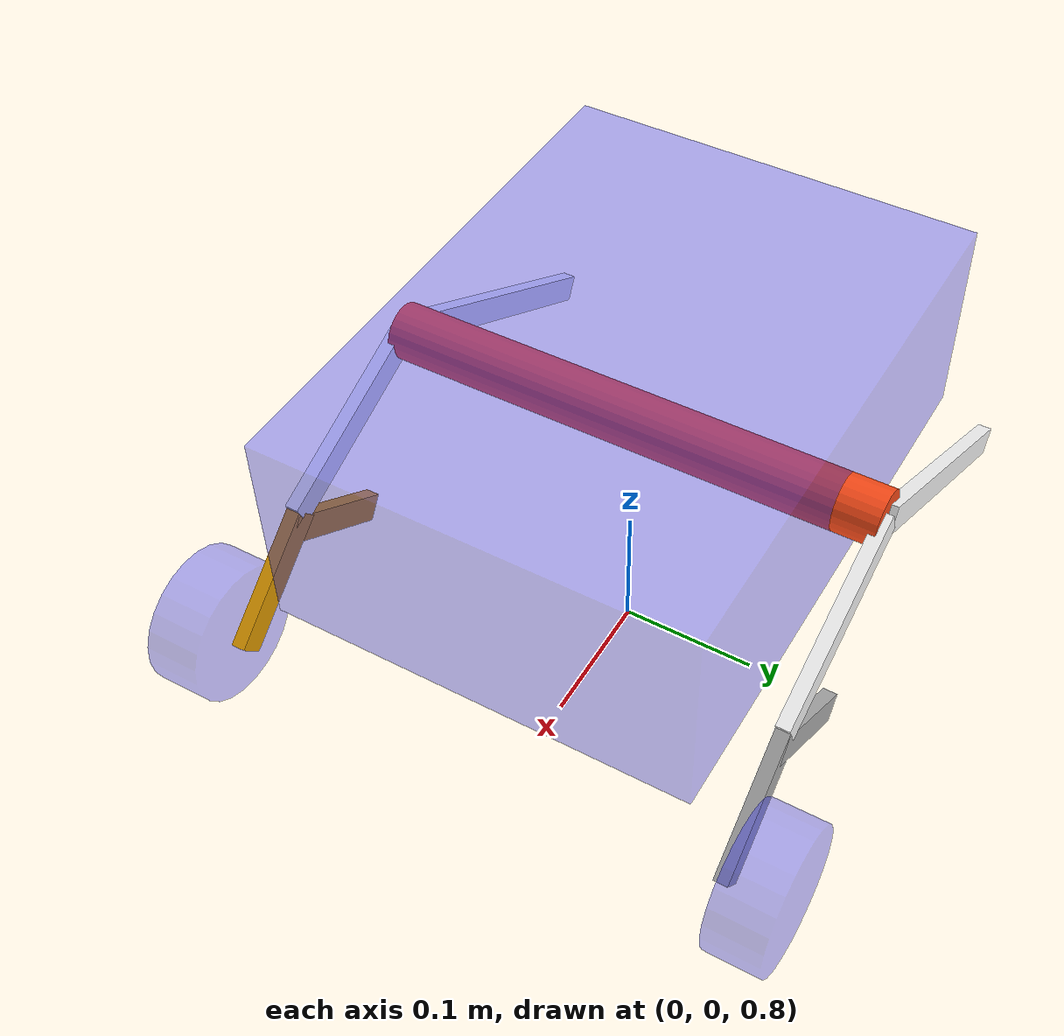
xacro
<?xml version="1.0"?>
<robot xmlns:xacro="http://www.ros.org/wiki/xacro" name="crater">

    <xacro:include filename="crater_core.xacro" />
    <xacro:include filename="ros2_control.xacro" />

    <!-- =============== Gazebo =============== -->
</robot>

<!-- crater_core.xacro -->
<robot xmlns:xacro="http://www.ros.org/wiki/xacro">
    <!-- Base Arm Properties -->
    <xacro:property name="chassis_x" value="0.4" />
    <xacro:property name="chassis_y" value="0.3" />
    <xacro:property name="chassis_z" value="0.15" />

    <!-- Mount Rod Properties -->
    <xacro:property name="compute_rod_x" value="0" />
    <xacro:property name="compute_rod_z" value="0" />
    <xacro:property name="compute_rod_length" value="${chassis_y + 0.060}" />
    <xacro:property name="compute_rod_radius" value="0.02" />
    <xacro:property name="wheel_bar_width" value="" />

    <!-- Upper Arm Properties -->
    <!-- The rear has a wheel attached. The front is a rotational joint for balance -->
    <xacro:property name="front_angle" value="0.4" />
    <xacro:property name="back_angle" value="-0.5" />

    <!-- Lower Front Arm Properties -->
    <xacro:property name="front_length" value="0.15" />
    <xacro:property name="back_length" value="0.25" />

    <!-- Includes -->
    <xacro:include filename="colors.xacro" />

    <!-- Include Bodies -->
    <xacro:include filename="bodies/center_chassis.xacro" />
    <xacro:include filename="bodies/upper_suspension.xacro" />
    <xacro:include filename="bodies/lower_front_suspension.xacro" />
    <xacro:include filename="bodies/wheel.xacro" />

    <!-- Dummy + Base Links -->
    <link name="dummy" />
    <link name="base_link">
        <inertial>
            <origin xyz="0 0 0.017"/>
            <mass value="1.2"/>
            <inertia ixx="0.0001873" ixy="0" ixz="0" iyy="0.000055" iyz="0" izz="0.0002283" />
        </inertial>
    </link>

    <joint name="dummy_joint" type="fixed">
        <parent link="dummy"/>
        <child link="base_link"/>
    </joint>

    <!-- Link body to origin rod  -->
    <joint name="base_link_to_chassis" type="fixed">
        <parent link="base_link" />
        <child link="compute_box" />
        <origin xyz="0 0 1" />
    </joint>

    <!-- Add arm bases to compute rod -->
    <xacro:base_arm prefix="right" reflect="-1" front_angle="${front_angle}" back_angle="${back_angle}" />
    <xacro:base_arm prefix="left" reflect="1" front_angle="${front_angle}" back_angle="${back_angle}" />

    <!-- Add front lower mounts to upper mount -->
    <xacro:front_lower_suspension prefix="left" reflect="1" offset_angle="${front_angle}" />
    <xacro:front_lower_suspension prefix="right" reflect="-1" offset_angle="${front_angle}" />

    <!-- Add the 6 wheels to the robot -->
    <!-- 3 Left Wheels -->
    <xacro:wheel parent="left_front_lower_susp" prefix="LF" reflect="1" offset_x="0.065" offset_z="-0.06"/>

    <!-- 3 Right Wheels -->
    <xacro:wheel parent="right_front_lower_susp" prefix="RF" reflect="-1" offset_x="0.065" offset_z="-0.06"/>

</robot>

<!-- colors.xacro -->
<robot xmlns:xacro="http://www.ros.org/wiki/xacro">
    <material name="white">
        <color rgba="1 1 1 1" />
    </material>
    <material name="orange">
        <color rgba="1 0.3 0.1 1" />
    </material>
    <material name="blue">
        <color rgba="0.2 0.2 1 0.4" />
    </material>
    <material name="black">
        <color rgba="0 0 0 1" />
    </material>
    <material name="red">
        <color rgba="1 0 0 0" />
    </material>
</robot>

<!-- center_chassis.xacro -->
<robot xmlns:xacro="http://www.ros.org/wiki/xacro">
    <link name="compute_box">
        <inertial>
            <origin xyz="0.0 0.0 0.0" rpy="0.0 0.0 0.0"/>
            <mass value="0.0"/>
            <inertia ixx="0.0" ixy="0.0" ixz="0.0" iyy="0.0" iyz="0.0" izz="0.0"/>
        </inertial>
        <visual name="compute_box_body">
            <geometry>
                <box size="${chassis_x} ${chassis_y} ${chassis_z}"/>
            </geometry>
            <material name="blue" />
        </visual>
        <visual name="compute_box_rod">
            <origin xyz="${compute_rod_x} 0 ${compute_rod_z}" rpy="${pi/2} 0 0"/>
            <geometry>
                <cylinder length="${compute_rod_length}" radius="${compute_rod_radius}" />
            </geometry>
            <material name="orange" />
        </visual>

        <collision>
            <geometry>
                <box size="${chassis_x} ${chassis_y} ${chassis_z}"/>
            </geometry>
        </collision>
        <collision>
            <origin xyz="${compute_rod_x} 0 ${compute_rod_z}" rpy="${pi/2} 0 0"/>
            <geometry>
                <cylinder length="${compute_rod_length}" radius="${compute_rod_radius}" />
            </geometry>
        </collision>
    </link>
</robot>

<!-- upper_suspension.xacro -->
<robot xmlns:xacro="http://www.ros.org/wiki/xacro">
    <xacro:macro name="base_arm" params="prefix reflect front_angle back_angle">
        <link name="${prefix}_base_arm_front">
            <visual>
                <origin xyz="${front_length/2} 0 0" />
                <geometry>
                    <box size="${front_length} 0.01 0.02"/>
                </geometry>
                <material name="white"/>
            </visual>
        </link>

        <joint name ="base_to_${prefix}_base_arm_front" type="fixed">
            <parent link="compute_box" />
            <child link="${prefix}_base_arm_front" />
            <origin xyz="0 ${reflect*(compute_rod_length/2)} ${compute_rod_x}" rpy="0 ${front_angle} 0"/>
        </joint>

        <link name="${prefix}_base_arm_back">
            <visual>
                <origin xyz="-${back_length/2} 0 0"/>
                <geometry>
                    <box size="${back_length} 0.01 0.02"/>
                </geometry>
                <material name="white"/>
            </visual>
        </link>

        <joint name ="base_to_${prefix}_base_arm_back" type="fixed">
            <parent link="compute_box" />
            <child link="${prefix}_base_arm_back" />
            <origin xyz="0 ${reflect*(compute_rod_length/2)} ${compute_rod_x}" rpy="0 ${back_angle} 0" />
        </joint>

    </xacro:macro>
</robot>

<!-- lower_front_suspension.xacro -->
<robot xmlns:xacro="http://www.ros.org/wiki/xacro">

    <xacro:macro name="arm_segment" params="reflect length angle">
        <visual>
            <geometry>
                <box size="${length} 0.01 0.02" />
            </geometry>
            <origin xyz="${reflect*length/3} 0 -${length/3}" rpy="0 ${angle} 0" />
        </visual>
        <collision>
            <geometry>
                <box size="${length} 0.01 0.02" />
            </geometry>
            <origin xyz="${reflect*length/3} 0 -${length/3}" rpy="0 ${angle} 0" />
        </collision>
    </xacro:macro>

    <xacro:macro name="front_lower_suspension" params="prefix reflect offset_angle">
        <xacro:property name="forward_length" value="0.1" />
        <link name="${prefix}_front_lower_susp">
            <xacro:arm_segment reflect="1" length="0.1" angle="0.70" />
            <xacro:arm_segment reflect="-1" length="0.1" angle="5.7" />
        </link>

        <joint name="upper_mount_to_${prefix}_front_wheel_frame" type="fixed">
            <axis xyz="0 1 0" />
            <parent link="${prefix}_base_arm_front" />
            <child link="${prefix}_front_lower_susp" />
            <origin xyz="0.15 0 0" rpy="0 -${offset_angle} 0" />
        </joint>
    </xacro:macro>
</robot>

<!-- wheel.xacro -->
<robot xmlns:xacro="http://www.ros.org/wiki/xacro">
    <xacro:macro name="wheel" params="parent prefix reflect offset_x offset_z">
        <link name="${prefix}_wheel">
            <visual>
                <geometry>
                    <cylinder radius="0.05" length="0.04" />
                </geometry>
                <material name="blue" />
            </visual>
            <collision>
                <geometry>
                    <cylinder radius="0.05" length="0.04" />
                </geometry>
            </collision>

            <inertial>
                <origin xyz="0 0 0" rpy="0 0 0"/>
                <mass value="0.5"/>
                <inertia ixx="0.001" ixy="0.0" ixz="0.0" iyy="0.001" iyz="0.0" izz="0.001"/>
            </inertial>
        </link>

        <joint name="${prefix}_wheel_to_lower_suspension" type="continuous">
            <parent link="${parent}" />
            <child link="${prefix}_wheel" />
            <axis xyz="0 0 ${reflect*1}" />
            <origin xyz="${offset_x} ${reflect*0.025} ${offset_z}" rpy="${reflect*-pi/2} 0 0" />
        </joint>

    </xacro:macro>

</robot>
